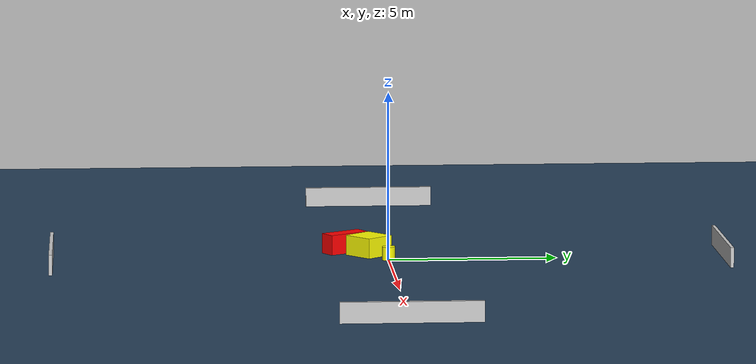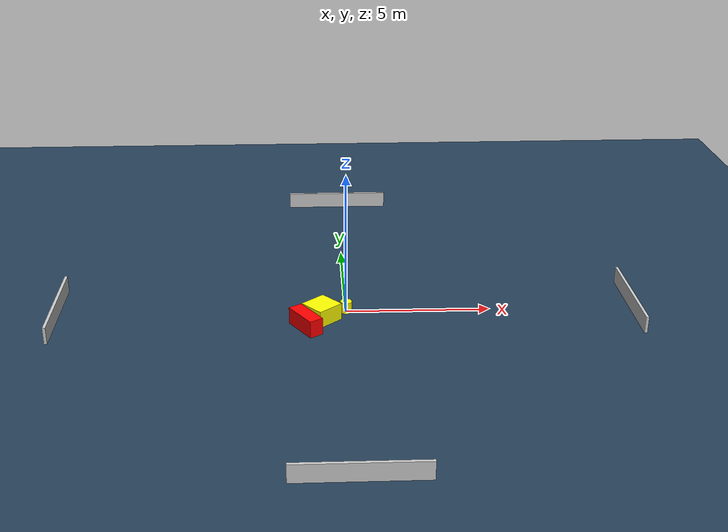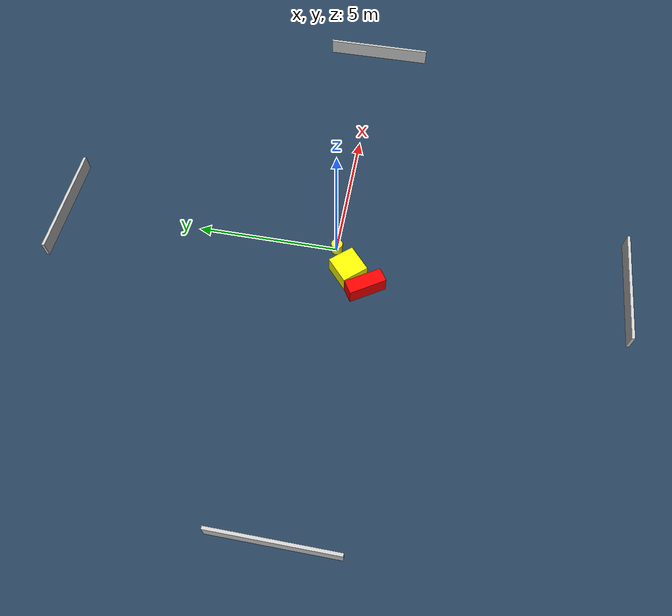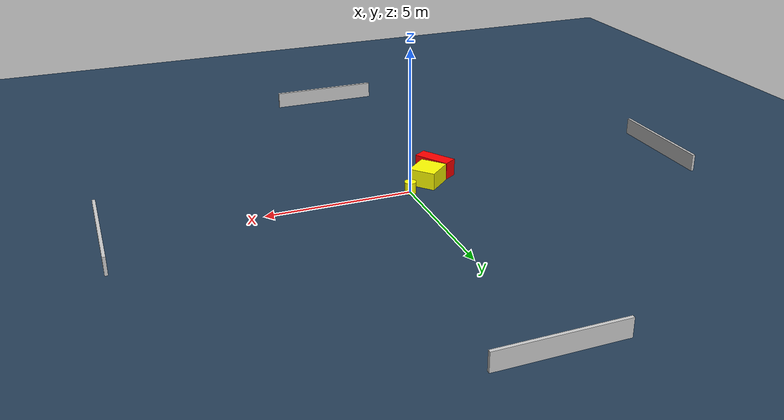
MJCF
<?xml version="1.0" ?>
<mujoco model="generated_environment">
  <option timestep="0.01" integrator="RK4" cone="elliptic"/>
  <default>
    <geom density="1"/>
  </default>
  <asset>
    <texture builtin="gradient" height="3072" name="skybox" rgb1="0.3 0.5 0.7" rgb2="0 0 0" type="skybox" width="512"/>
    <texture builtin="checker" height="300" name="groundplane" rgb1="0.2 0.3 0.4" rgb2="0.1 0.2 0.3" type="2d" width="300"/>
    <material name="groundplane" reflectance="0.2" texrepeat="5 5" texture="groundplane"/>
  </asset>
  <worldbody>
    <light dir="0 0 -1" directional="true" pos="0 0 1.5"/>
    <geom condim="3" friction="0.5 0.005 0.001" material="groundplane" name="floor" pos="0 0 0" size="0 0 0.05" type="plane"/>
    <body name="walls">
      <geom name="wall_1" condim="4" pos="-10.0 0.0 0.3" rgba="0.800000011920929 0.800000011920929 0.800000011920929 1.0" size="0.05 2.0 0.3" type="box"/>
      <geom name="wall_2" condim="4" pos="10.0 0.0 0.3" rgba="0.800000011920929 0.800000011920929 0.800000011920929 1.0" size="0.05 2.0 0.3" type="box"/>
      <geom name="wall_3" condim="4" pos="0.0 -10.0 0.3" rgba="0.800000011920929 0.800000011920929 0.800000011920929 1.0" size="2.0 0.05 0.3" type="box"/>
      <geom name="wall_4" condim="4" pos="0.0 10.0 0.3" rgba="0.800000011920929 0.800000011920929 0.800000011920929 1.0" size="2.0 0.05 0.3" type="box"/>
    </body>
    <body name="robot">
      <joint name="joint_x" type="slide" pos="0 0 0" axis="1 0 0"/>
      <joint name="joint_y" type="slide" pos="0 0 0" axis="0 1 0"/>
      <geom name="robot" type="cylinder" pos="0.0 0.0 0.2" size="0.2 0.2 0.0" mass="5.0" friction="1.0 0.005 0.0001" condim="4" rgba="1.0 1.0 0.0 1.0"/>
    </body>
    <body name="obstacle_1_movable">
      <geom name="obstacle_1_movable" condim="4" pos="-0.8611169792104802 -0.5400697425743739 0.3" euler="0 0 311.58244111043933" friction="0.0 0.005 0.001" rgba="1.0 1.0 0.0 1.0" size="0.47080073321941984 0.4919545366909916 0.3" type="box" mass="0.1"/>
      <joint type="free"/>
    </body>
    <body name="obstacle_2_static">
      <geom name="obstacle_2_static" condim="4" pos="-1.4129671113383013 -1.2240411057653704 0.3" euler="0 0 32.62942867278608" friction="0.0 0.005 0.001" rgba="1.0 0.0 0.0 1.0" size="0.25222804445504765 0.6589219076781725 0.3" type="box"/>
    </body>
  </worldbody>
  <actuator>
    <motor name="actuator_x" joint="joint_x" gear="1" ctrlrange="-1 1"/>
    <motor name="actuator_y" joint="joint_y" gear="1" ctrlrange="-1 1"/>
  </actuator>
</mujoco>
